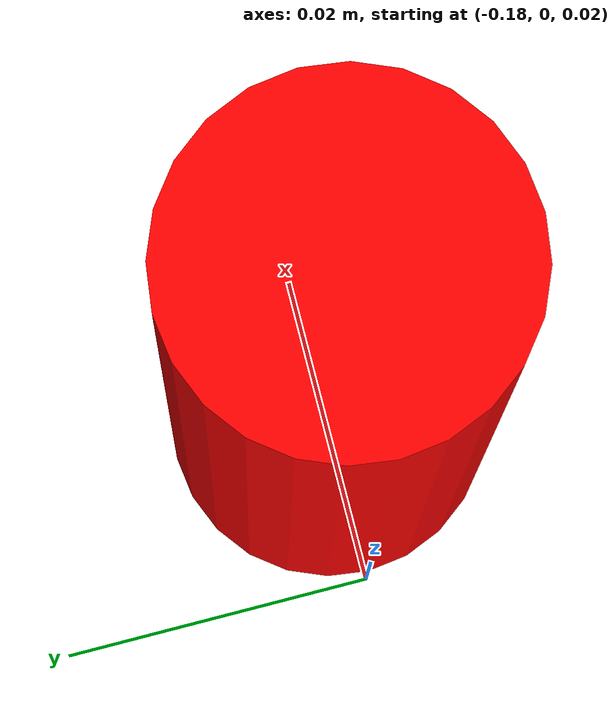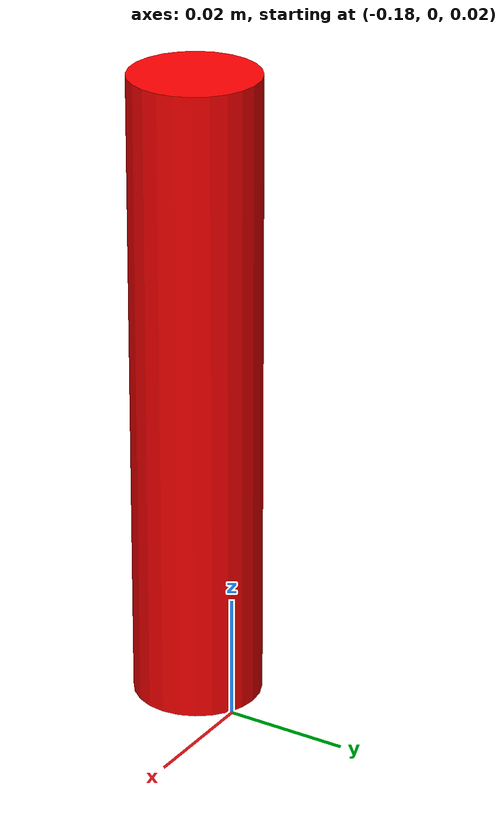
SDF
<?xml version="1.0"?>
<sdf version="1.4">
   <world name="world">

      <model name="laser">
         <pose> -0.17 0.0 0.08 0 0 0 </pose>
         <static>true</static>
         <link name="laser_link">
            <visual name="laser_visual">
	       <geometry>
	          <cylinder>
	             <radius>0.01</radius>
	             <length>0.1</length>
      	          </cylinder>
      	       </geometry>
	       <material>
	          <ambient>1 0 0 1</ambient>
	          <diffuse>1 0 0 1</diffuse>
	       </material>
            </visual>
         </link>
      </model>

   </world>
</sdf>
